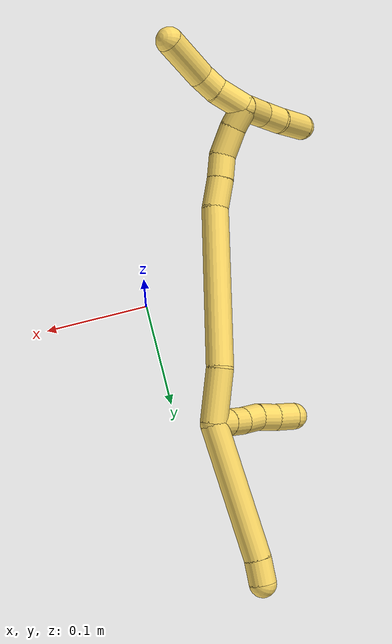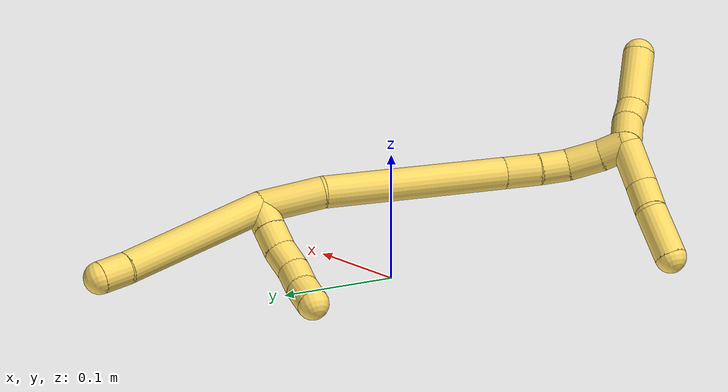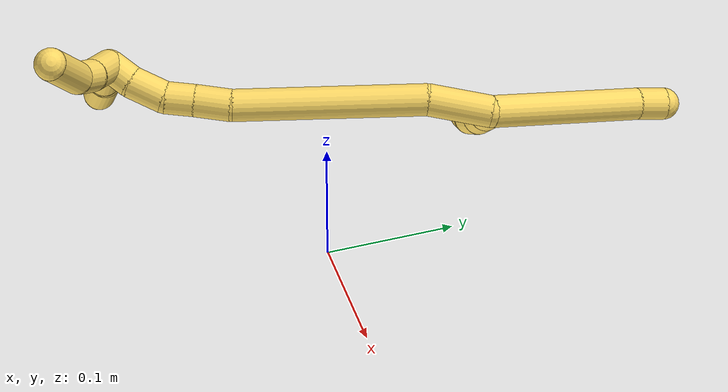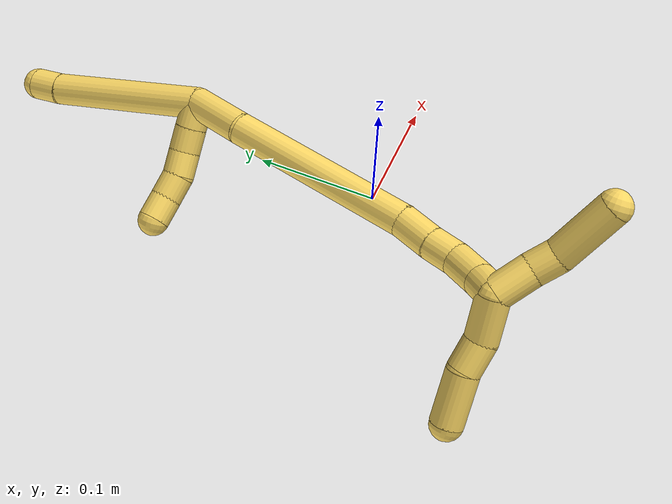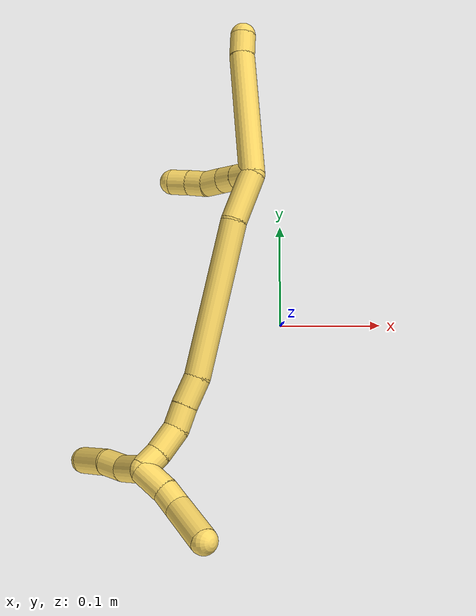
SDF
<sdf version="1.7">
 <world name="default">
  <model name="5">
   <static>0</static>
   <link name="5">
    <collision name="collision-cylinder-e_1_2_8">
     <pose>0.00495 0.061086 -0.016913 -1.84091 0.077939 -0.102413</pose>
     <geometry><cylinder><radius>0.0125</radius><length>0.127155</length></cylinder></geometry>
     <surface>
      <friction><ode><mu>1.16</mu><mu2>1.16</mu2><slip1>0</slip1><slip2>0</slip2></ode></friction>
      <contact><ode><kp>1e+06</kp><kd>1</kd><max_vel>0</max_vel><min_depth>0.001</min_depth></ode></contact>
     </surface>
    </collision>
    <visual name="visual-cylinder-e_1_2_8">
     <pose>0.00495 0.061086 -0.016913 -1.84091 0.077939 -0.102413</pose>
     <geometry><cylinder><radius>0.0125</radius><length>0.127155</length></cylinder></geometry>
     <material><ambient>1 0.858824 0.4 1</ambient></material>
    </visual>
    <collision name="collision-cylinder-e_2_8_6">
     <pose>0.011506 0.133318 -0.035741 -1.74085 0.141079 -0.167257</pose>
     <geometry><cylinder><radius>0.0125</radius><length>0.022845</length></cylinder></geometry>
     <surface>
      <friction><ode><mu>1.16</mu><mu2>1.16</mu2><slip1>0</slip1><slip2>0</slip2></ode></friction>
      <contact><ode><kp>1e+06</kp><kd>1</kd><max_vel>0</max_vel><min_depth>0.001</min_depth></ode></contact>
     </surface>
    </collision>
    <visual name="visual-cylinder-e_2_8_6">
     <pose>0.011506 0.133318 -0.035741 -1.74085 0.141079 -0.167257</pose>
     <geometry><cylinder><radius>0.0125</radius><length>0.022845</length></cylinder></geometry>
     <material><ambient>1 0.858824 0.4 1</ambient></material>
    </visual>
    <collision name="collision-cylinder-e_1_2_9">
     <pose>-0.000467 -0.000439 -0.009979 3.09762 -0.046707 -1.63112</pose>
     <geometry><cylinder><radius>0.0125</radius><length>0.02</length></cylinder></geometry>
     <surface>
      <friction><ode><mu>1.16</mu><mu2>1.16</mu2><slip1>0</slip1><slip2>0</slip2></ode></friction>
      <contact><ode><kp>1e+06</kp><kd>1</kd><max_vel>0</max_vel><min_depth>0.001</min_depth></ode></contact>
     </surface>
    </collision>
    <visual name="visual-cylinder-e_1_2_9">
     <pose>-0.000467 -0.000439 -0.009979 3.09762 -0.046707 -1.63112</pose>
     <geometry><cylinder><radius>0.0125</radius><length>0.02</length></cylinder></geometry>
     <material><ambient>1 0.858824 0.4 1</ambient></material>
    </visual>
    <collision name="collision-cylinder-e_2_9_10">
     <pose>-0.001382 -0.001571 -0.029925 3.07215 -0.044867 -1.14709</pose>
     <geometry><cylinder><radius>0.0125</radius><length>0.02</length></cylinder></geometry>
     <surface>
      <friction><ode><mu>1.16</mu><mu2>1.16</mu2><slip1>0</slip1><slip2>0</slip2></ode></friction>
      <contact><ode><kp>1e+06</kp><kd>1</kd><max_vel>0</max_vel><min_depth>0.001</min_depth></ode></contact>
     </surface>
    </collision>
    <visual name="visual-cylinder-e_2_9_10">
     <pose>-0.001382 -0.001571 -0.029925 3.07215 -0.044867 -1.14709</pose>
     <geometry><cylinder><radius>0.0125</radius><length>0.02</length></cylinder></geometry>
     <material><ambient>1 0.858824 0.4 1</ambient></material>
    </visual>
    <collision name="collision-cylinder-e_3_10_11">
     <pose>-0.003871 -0.003586 -0.049591 3.00621 -0.205507 -1.97836</pose>
     <geometry><cylinder><radius>0.0125</radius><length>0.02</length></cylinder></geometry>
     <surface>
      <friction><ode><mu>1.16</mu><mu2>1.16</mu2><slip1>0</slip1><slip2>0</slip2></ode></friction>
      <contact><ode><kp>1e+06</kp><kd>1</kd><max_vel>0</max_vel><min_depth>0.001</min_depth></ode></contact>
     </surface>
    </collision>
    <visual name="visual-cylinder-e_3_10_11">
     <pose>-0.003871 -0.003586 -0.049591 3.00621 -0.205507 -1.97836</pose>
     <geometry><cylinder><radius>0.0125</radius><length>0.02</length></cylinder></geometry>
     <material><ambient>1 0.858824 0.4 1</ambient></material>
    </visual>
    <collision name="collision-cylinder-e_4_11_12">
     <pose>-0.008897 -0.003963 -0.068788 -3.04249 -0.303122 2.51366</pose>
     <geometry><cylinder><radius>0.0125</radius><length>0.02</length></cylinder></geometry>
     <surface>
      <friction><ode><mu>1.16</mu><mu2>1.16</mu2><slip1>0</slip1><slip2>0</slip2></ode></friction>
      <contact><ode><kp>1e+06</kp><kd>1</kd><max_vel>0</max_vel><min_depth>0.001</min_depth></ode></contact>
     </surface>
    </collision>
    <visual name="visual-cylinder-e_4_11_12">
     <pose>-0.008897 -0.003963 -0.068788 -3.04249 -0.303122 2.51366</pose>
     <geometry><cylinder><radius>0.0125</radius><length>0.02</length></cylinder></geometry>
     <material><ambient>1 0.858824 0.4 1</ambient></material>
    </visual>
    <collision name="collision-cylinder-e_5_12_5">
     <pose>-0.016093 -0.002486 -0.08734 -3.08281 -0.434676 2.87689</pose>
     <geometry><cylinder><radius>0.0125</radius><length>0.02</length></cylinder></geometry>
     <surface>
      <friction><ode><mu>1.16</mu><mu2>1.16</mu2><slip1>0</slip1><slip2>0</slip2></ode></friction>
      <contact><ode><kp>1e+06</kp><kd>1</kd><max_vel>0</max_vel><min_depth>0.001</min_depth></ode></contact>
     </surface>
    </collision>
    <visual name="visual-cylinder-e_5_12_5">
     <pose>-0.016093 -0.002486 -0.08734 -3.08281 -0.434676 2.87689</pose>
     <geometry><cylinder><radius>0.0125</radius><length>0.02</length></cylinder></geometry>
     <material><ambient>1 0.858824 0.4 1</ambient></material>
    </visual>
    <collision name="collision-cylinder-e_1_2_13">
     <pose>-0.009115 -0.023275 -0.001206 1.62257 -0.372796 -0.392124</pose>
     <geometry><cylinder><radius>0.0125</radius><length>0.05005</length></cylinder></geometry>
     <surface>
      <friction><ode><mu>1.16</mu><mu2>1.16</mu2><slip1>0</slip1><slip2>0</slip2></ode></friction>
      <contact><ode><kp>1e+06</kp><kd>1</kd><max_vel>0</max_vel><min_depth>0.001</min_depth></ode></contact>
     </surface>
    </collision>
    <visual name="visual-cylinder-e_1_2_13">
     <pose>-0.009115 -0.023275 -0.001206 1.62257 -0.372796 -0.392124</pose>
     <geometry><cylinder><radius>0.0125</radius><length>0.05005</length></cylinder></geometry>
     <material><ambient>1 0.858824 0.4 1</ambient></material>
    </visual>
    <collision name="collision-cylinder-e_2_13_14">
     <pose>-0.0304 -0.120105 -0.008855 1.65817 -0.163368 -0.178227</pose>
     <geometry><cylinder><radius>0.0125</radius><length>0.149667</length></cylinder></geometry>
     <surface>
      <friction><ode><mu>1.16</mu><mu2>1.16</mu2><slip1>0</slip1><slip2>0</slip2></ode></friction>
      <contact><ode><kp>1e+06</kp><kd>1</kd><max_vel>0</max_vel><min_depth>0.001</min_depth></ode></contact>
     </surface>
    </collision>
    <visual name="visual-cylinder-e_2_13_14">
     <pose>-0.0304 -0.120105 -0.008855 1.65817 -0.163368 -0.178227</pose>
     <geometry><cylinder><radius>0.0125</radius><length>0.149667</length></cylinder></geometry>
     <material><ambient>1 0.858824 0.4 1</ambient></material>
    </visual>
    <collision name="collision-cylinder-e_3_14_15">
     <pose>-0.047323 -0.206803 -0.017769 1.75666 -0.341415 -0.409806</pose>
     <geometry><cylinder><radius>0.0125</radius><length>0.028382</length></cylinder></geometry>
     <surface>
      <friction><ode><mu>1.16</mu><mu2>1.16</mu2><slip1>0</slip1><slip2>0</slip2></ode></friction>
      <contact><ode><kp>1e+06</kp><kd>1</kd><max_vel>0</max_vel><min_depth>0.001</min_depth></ode></contact>
     </surface>
    </collision>
    <visual name="visual-cylinder-e_3_14_15">
     <pose>-0.047323 -0.206803 -0.017769 1.75666 -0.341415 -0.409806</pose>
     <geometry><cylinder><radius>0.0125</radius><length>0.028382</length></cylinder></geometry>
     <material><ambient>1 0.858824 0.4 1</ambient></material>
    </visual>
    <collision name="collision-cylinder-e_4_15_16">
     <pose>-0.05538 -0.230707 -0.021412 1.67924 -0.296327 -0.329756</pose>
     <geometry><cylinder><radius>0.0125</radius><length>0.022639</length></cylinder></geometry>
     <surface>
      <friction><ode><mu>1.16</mu><mu2>1.16</mu2><slip1>0</slip1><slip2>0</slip2></ode></friction>
      <contact><ode><kp>1e+06</kp><kd>1</kd><max_vel>0</max_vel><min_depth>0.001</min_depth></ode></contact>
     </surface>
    </collision>
    <visual name="visual-cylinder-e_4_15_16">
     <pose>-0.05538 -0.230707 -0.021412 1.67924 -0.296327 -0.329756</pose>
     <geometry><cylinder><radius>0.0125</radius><length>0.022639</length></cylinder></geometry>
     <material><ambient>1 0.858824 0.4 1</ambient></material>
    </visual>
    <collision name="collision-cylinder-e_5_16_17">
     <pose>-0.067127 -0.252692 -0.024194 1.71332 -0.640022 -0.730402</pose>
     <geometry><cylinder><radius>0.0125</radius><length>0.028272</length></cylinder></geometry>
     <surface>
      <friction><ode><mu>1.16</mu><mu2>1.16</mu2><slip1>0</slip1><slip2>0</slip2></ode></friction>
      <contact><ode><kp>1e+06</kp><kd>1</kd><max_vel>0</max_vel><min_depth>0.001</min_depth></ode></contact>
     </surface>
    </collision>
    <visual name="visual-cylinder-e_5_16_17">
     <pose>-0.067127 -0.252692 -0.024194 1.71332 -0.640022 -0.730402</pose>
     <geometry><cylinder><radius>0.0125</radius><length>0.028272</length></cylinder></geometry>
     <material><ambient>1 0.858824 0.4 1</ambient></material>
    </visual>
    <collision name="collision-cylinder-e_6_17_1">
     <pose>-0.083444 -0.270803 -0.026644 1.69207 -0.848496 -0.943332</pose>
     <geometry><cylinder><radius>0.0125</radius><length>0.02099</length></cylinder></geometry>
     <surface>
      <friction><ode><mu>1.16</mu><mu2>1.16</mu2><slip1>0</slip1><slip2>0</slip2></ode></friction>
      <contact><ode><kp>1e+06</kp><kd>1</kd><max_vel>0</max_vel><min_depth>0.001</min_depth></ode></contact>
     </surface>
    </collision>
    <visual name="visual-cylinder-e_6_17_1">
     <pose>-0.083444 -0.270803 -0.026644 1.69207 -0.848496 -0.943332</pose>
     <geometry><cylinder><radius>0.0125</radius><length>0.02099</length></cylinder></geometry>
     <material><ambient>1 0.858824 0.4 1</ambient></material>
    </visual>
    <collision name="collision-cylinder-e_1_1_18">
     <pose>-0.088752 -0.279124 -0.044558 3.05783 0.148616 2.11621</pose>
     <geometry><cylinder><radius>0.0125</radius><length>0.034651</length></cylinder></geometry>
     <surface>
      <friction><ode><mu>1.16</mu><mu2>1.16</mu2><slip1>0</slip1><slip2>0</slip2></ode></friction>
      <contact><ode><kp>1e+06</kp><kd>1</kd><max_vel>0</max_vel><min_depth>0.001</min_depth></ode></contact>
     </surface>
    </collision>
    <visual name="visual-cylinder-e_1_1_18">
     <pose>-0.088752 -0.279124 -0.044558 3.05783 0.148616 2.11621</pose>
     <geometry><cylinder><radius>0.0125</radius><length>0.034651</length></cylinder></geometry>
     <material><ambient>1 0.858824 0.4 1</ambient></material>
    </visual>
    <collision name="collision-cylinder-e_2_18_19">
     <pose>-0.087646 -0.278879 -0.073633 -3.00267 -0.119809 1.42289</pose>
     <geometry><cylinder><radius>0.0125</radius><length>0.02441</length></cylinder></geometry>
     <surface>
      <friction><ode><mu>1.16</mu><mu2>1.16</mu2><slip1>0</slip1><slip2>0</slip2></ode></friction>
      <contact><ode><kp>1e+06</kp><kd>1</kd><max_vel>0</max_vel><min_depth>0.001</min_depth></ode></contact>
     </surface>
    </collision>
    <visual name="visual-cylinder-e_2_18_19">
     <pose>-0.087646 -0.278879 -0.073633 -3.00267 -0.119809 1.42289</pose>
     <geometry><cylinder><radius>0.0125</radius><length>0.02441</length></cylinder></geometry>
     <material><ambient>1 0.858824 0.4 1</ambient></material>
    </visual>
    <collision name="collision-cylinder-e_3_19_4">
     <pose>-0.088024 -0.278365 -0.106042 3.08466 0.052829 1.49592</pose>
     <geometry><cylinder><radius>0.0125</radius><length>0.040939</length></cylinder></geometry>
     <surface>
      <friction><ode><mu>1.16</mu><mu2>1.16</mu2><slip1>0</slip1><slip2>0</slip2></ode></friction>
      <contact><ode><kp>1e+06</kp><kd>1</kd><max_vel>0</max_vel><min_depth>0.001</min_depth></ode></contact>
     </surface>
    </collision>
    <visual name="visual-cylinder-e_3_19_4">
     <pose>-0.088024 -0.278365 -0.106042 3.08466 0.052829 1.49592</pose>
     <geometry><cylinder><radius>0.0125</radius><length>0.040939</length></cylinder></geometry>
     <material><ambient>1 0.858824 0.4 1</ambient></material>
    </visual>
    <collision name="collision-cylinder-e_1_1_20">
     <pose>-0.086673 -0.285884 -0.015816 0.612223 0.314959 0.100288</pose>
     <geometry><cylinder><radius>0.0125</radius><length>0.029989</length></cylinder></geometry>
     <surface>
      <friction><ode><mu>1.16</mu><mu2>1.16</mu2><slip1>0</slip1><slip2>0</slip2></ode></friction>
      <contact><ode><kp>1e+06</kp><kd>1</kd><max_vel>0</max_vel><min_depth>0.001</min_depth></ode></contact>
     </surface>
    </collision>
    <visual name="visual-cylinder-e_1_1_20">
     <pose>-0.086673 -0.285884 -0.015816 0.612223 0.314959 0.100288</pose>
     <geometry><cylinder><radius>0.0125</radius><length>0.029989</length></cylinder></geometry>
     <material><ambient>1 0.858824 0.4 1</ambient></material>
    </visual>
    <collision name="collision-cylinder-e_2_20_21">
     <pose>-0.080615 -0.300508 0.00377 0.682098 0.137671 0.048929</pose>
     <geometry><cylinder><radius>0.0125</radius><length>0.020597</length></cylinder></geometry>
     <surface>
      <friction><ode><mu>1.16</mu><mu2>1.16</mu2><slip1>0</slip1><slip2>0</slip2></ode></friction>
      <contact><ode><kp>1e+06</kp><kd>1</kd><max_vel>0</max_vel><min_depth>0.001</min_depth></ode></contact>
     </surface>
    </collision>
    <visual name="visual-cylinder-e_2_20_21">
     <pose>-0.080615 -0.300508 0.00377 0.682098 0.137671 0.048929</pose>
     <geometry><cylinder><radius>0.0125</radius><length>0.020597</length></cylinder></geometry>
     <material><ambient>1 0.858824 0.4 1</ambient></material>
    </visual>
    <collision name="collision-cylinder-e_3_21_3">
     <pose>-0.082226 -0.317759 0.033694 0.456973 -0.122725 -0.028573</pose>
     <geometry><cylinder><radius>0.0125</radius><length>0.049414</length></cylinder></geometry>
     <surface>
      <friction><ode><mu>1.16</mu><mu2>1.16</mu2><slip1>0</slip1><slip2>0</slip2></ode></friction>
      <contact><ode><kp>1e+06</kp><kd>1</kd><max_vel>0</max_vel><min_depth>0.001</min_depth></ode></contact>
     </surface>
    </collision>
    <visual name="visual-cylinder-e_3_21_3">
     <pose>-0.082226 -0.317759 0.033694 0.456973 -0.122725 -0.028573</pose>
     <geometry><cylinder><radius>0.0125</radius><length>0.049414</length></cylinder></geometry>
     <material><ambient>1 0.858824 0.4 1</ambient></material>
    </visual>
    <collision name="collision-sphere-3">
     <pose>-0.08525 -0.328578 0.055699 0 -0 0</pose>
     <geometry><sphere><radius>0.0125</radius></sphere></geometry>
     <surface>
      <friction><ode><mu>1.16</mu><mu2>1.16</mu2><slip1>0</slip1><slip2>0</slip2></ode></friction>
      <contact><ode><kp>1e+06</kp><kd>1</kd><max_vel>0</max_vel><min_depth>0.001</min_depth></ode></contact>
     </surface>
    </collision>
    <visual name="visual-sphere-3">
     <pose>-0.08525 -0.328578 0.055699 0 -0 0</pose>
     <geometry><sphere><radius>0.0125</radius></sphere></geometry>
     <material><ambient>1 0.858824 0.4 1</ambient></material>
    </visual>
    <collision name="collision-sphere-21">
     <pose>-0.079201 -0.306939 0.011689 0 -0 0</pose>
     <geometry><sphere><radius>0.0125</radius></sphere></geometry>
     <surface>
      <friction><ode><mu>1.16</mu><mu2>1.16</mu2><slip1>0</slip1><slip2>0</slip2></ode></friction>
      <contact><ode><kp>1e+06</kp><kd>1</kd><max_vel>0</max_vel><min_depth>0.001</min_depth></ode></contact>
     </surface>
    </collision>
    <visual name="visual-sphere-21">
     <pose>-0.079201 -0.306939 0.011689 0 -0 0</pose>
     <geometry><sphere><radius>0.0125</radius></sphere></geometry>
     <material><ambient>1 0.858824 0.4 1</ambient></material>
    </visual>
    <collision name="collision-sphere-20">
     <pose>-0.082028 -0.294077 -0.004149 0 -0 0</pose>
     <geometry><sphere><radius>0.0125</radius></sphere></geometry>
     <surface>
      <friction><ode><mu>1.16</mu><mu2>1.16</mu2><slip1>0</slip1><slip2>0</slip2></ode></friction>
      <contact><ode><kp>1e+06</kp><kd>1</kd><max_vel>0</max_vel><min_depth>0.001</min_depth></ode></contact>
     </surface>
    </collision>
    <visual name="visual-sphere-20">
     <pose>-0.082028 -0.294077 -0.004149 0 -0 0</pose>
     <geometry><sphere><radius>0.0125</radius></sphere></geometry>
     <material><ambient>1 0.858824 0.4 1</ambient></material>
    </visual>
    <collision name="collision-sphere-4">
     <pose>-0.086943 -0.279528 -0.126449 0 -0 0</pose>
     <geometry><sphere><radius>0.0125</radius></sphere></geometry>
     <surface>
      <friction><ode><mu>1.16</mu><mu2>1.16</mu2><slip1>0</slip1><slip2>0</slip2></ode></friction>
      <contact><ode><kp>1e+06</kp><kd>1</kd><max_vel>0</max_vel><min_depth>0.001</min_depth></ode></contact>
     </surface>
    </collision>
    <visual name="visual-sphere-4">
     <pose>-0.086943 -0.279528 -0.126449 0 -0 0</pose>
     <geometry><sphere><radius>0.0125</radius></sphere></geometry>
     <material><ambient>1 0.858824 0.4 1</ambient></material>
    </visual>
    <collision name="collision-sphere-11">
     <pose>-0.005912 -0.004907 -0.059291 0 -0 0</pose>
     <geometry><sphere><radius>0.0125</radius></sphere></geometry>
     <surface>
      <friction><ode><mu>1.16</mu><mu2>1.16</mu2><slip1>0</slip1><slip2>0</slip2></ode></friction>
      <contact><ode><kp>1e+06</kp><kd>1</kd><max_vel>0</max_vel><min_depth>0.001</min_depth></ode></contact>
     </surface>
    </collision>
    <visual name="visual-sphere-11">
     <pose>-0.005912 -0.004907 -0.059291 0 -0 0</pose>
     <geometry><sphere><radius>0.0125</radius></sphere></geometry>
     <material><ambient>1 0.858824 0.4 1</ambient></material>
    </visual>
    <collision name="collision-sphere-10">
     <pose>-0.001831 -0.002264 -0.039891 0 -0 0</pose>
     <geometry><sphere><radius>0.0125</radius></sphere></geometry>
     <surface>
      <friction><ode><mu>1.16</mu><mu2>1.16</mu2><slip1>0</slip1><slip2>0</slip2></ode></friction>
      <contact><ode><kp>1e+06</kp><kd>1</kd><max_vel>0</max_vel><min_depth>0.001</min_depth></ode></contact>
     </surface>
    </collision>
    <visual name="visual-sphere-10">
     <pose>-0.001831 -0.002264 -0.039891 0 -0 0</pose>
     <geometry><sphere><radius>0.0125</radius></sphere></geometry>
     <material><ambient>1 0.858824 0.4 1</ambient></material>
    </visual>
    <collision name="collision-sphere-6">
     <pose>0.013113 0.144464 -0.037655 0 -0 0</pose>
     <geometry><sphere><radius>0.0125</radius></sphere></geometry>
     <surface>
      <friction><ode><mu>1.16</mu><mu2>1.16</mu2><slip1>0</slip1><slip2>0</slip2></ode></friction>
      <contact><ode><kp>1e+06</kp><kd>1</kd><max_vel>0</max_vel><min_depth>0.001</min_depth></ode></contact>
     </surface>
    </collision>
    <visual name="visual-sphere-6">
     <pose>0.013113 0.144464 -0.037655 0 -0 0</pose>
     <geometry><sphere><radius>0.0125</radius></sphere></geometry>
     <material><ambient>1 0.858824 0.4 1</ambient></material>
    </visual>
    <collision name="collision-sphere-9">
     <pose>-0.000934 -0.000878 -0.019959 0 -0 0</pose>
     <geometry><sphere><radius>0.0125</radius></sphere></geometry>
     <surface>
      <friction><ode><mu>1.16</mu><mu2>1.16</mu2><slip1>0</slip1><slip2>0</slip2></ode></friction>
      <contact><ode><kp>1e+06</kp><kd>1</kd><max_vel>0</max_vel><min_depth>0.001</min_depth></ode></contact>
     </surface>
    </collision>
    <visual name="visual-sphere-9">
     <pose>-0.000934 -0.000878 -0.019959 0 -0 0</pose>
     <geometry><sphere><radius>0.0125</radius></sphere></geometry>
     <material><ambient>1 0.858824 0.4 1</ambient></material>
    </visual>
    <collision name="collision-sphere-2">
     <geometry><sphere><radius>0.0125</radius></sphere></geometry>
     <surface>
      <friction><ode><mu>1.16</mu><mu2>1.16</mu2><slip1>0</slip1><slip2>0</slip2></ode></friction>
      <contact><ode><kp>1e+06</kp><kd>1</kd><max_vel>0</max_vel><min_depth>0.001</min_depth></ode></contact>
     </surface>
    </collision>
    <visual name="visual-sphere-2">
     <geometry><sphere><radius>0.0125</radius></sphere></geometry>
     <material><ambient>1 0.858824 0.4 1</ambient></material>
    </visual>
    <collision name="collision-sphere-19">
     <pose>-0.089105 -0.277201 -0.085634 0 -0 0</pose>
     <geometry><sphere><radius>0.0125</radius></sphere></geometry>
     <surface>
      <friction><ode><mu>1.16</mu><mu2>1.16</mu2><slip1>0</slip1><slip2>0</slip2></ode></friction>
      <contact><ode><kp>1e+06</kp><kd>1</kd><max_vel>0</max_vel><min_depth>0.001</min_depth></ode></contact>
     </surface>
    </collision>
    <visual name="visual-sphere-19">
     <pose>-0.089105 -0.277201 -0.085634 0 -0 0</pose>
     <geometry><sphere><radius>0.0125</radius></sphere></geometry>
     <material><ambient>1 0.858824 0.4 1</ambient></material>
    </visual>
    <collision name="collision-sphere-8">
     <pose>0.0099 0.122173 -0.033827 0 -0 0</pose>
     <geometry><sphere><radius>0.0125</radius></sphere></geometry>
     <surface>
      <friction><ode><mu>1.16</mu><mu2>1.16</mu2><slip1>0</slip1><slip2>0</slip2></ode></friction>
      <contact><ode><kp>1e+06</kp><kd>1</kd><max_vel>0</max_vel><min_depth>0.001</min_depth></ode></contact>
     </surface>
    </collision>
    <visual name="visual-sphere-8">
     <pose>0.0099 0.122173 -0.033827 0 -0 0</pose>
     <geometry><sphere><radius>0.0125</radius></sphere></geometry>
     <material><ambient>1 0.858824 0.4 1</ambient></material>
    </visual>
    <collision name="collision-sphere-12">
     <pose>-0.011882 -0.003019 -0.078285 0 -0 0</pose>
     <geometry><sphere><radius>0.0125</radius></sphere></geometry>
     <surface>
      <friction><ode><mu>1.16</mu><mu2>1.16</mu2><slip1>0</slip1><slip2>0</slip2></ode></friction>
      <contact><ode><kp>1e+06</kp><kd>1</kd><max_vel>0</max_vel><min_depth>0.001</min_depth></ode></contact>
     </surface>
    </collision>
    <visual name="visual-sphere-12">
     <pose>-0.011882 -0.003019 -0.078285 0 -0 0</pose>
     <geometry><sphere><radius>0.0125</radius></sphere></geometry>
     <material><ambient>1 0.858824 0.4 1</ambient></material>
    </visual>
    <collision name="collision-sphere-5">
     <pose>-0.020304 -0.001953 -0.096394 0 -0 0</pose>
     <geometry><sphere><radius>0.0125</radius></sphere></geometry>
     <surface>
      <friction><ode><mu>1.16</mu><mu2>1.16</mu2><slip1>0</slip1><slip2>0</slip2></ode></friction>
      <contact><ode><kp>1e+06</kp><kd>1</kd><max_vel>0</max_vel><min_depth>0.001</min_depth></ode></contact>
     </surface>
    </collision>
    <visual name="visual-sphere-5">
     <pose>-0.020304 -0.001953 -0.096394 0 -0 0</pose>
     <geometry><sphere><radius>0.0125</radius></sphere></geometry>
     <material><ambient>1 0.858824 0.4 1</ambient></material>
    </visual>
    <collision name="collision-sphere-13">
     <pose>-0.018229 -0.04655 -0.002412 0 -0 0</pose>
     <geometry><sphere><radius>0.0125</radius></sphere></geometry>
     <surface>
      <friction><ode><mu>1.16</mu><mu2>1.16</mu2><slip1>0</slip1><slip2>0</slip2></ode></friction>
      <contact><ode><kp>1e+06</kp><kd>1</kd><max_vel>0</max_vel><min_depth>0.001</min_depth></ode></contact>
     </surface>
    </collision>
    <visual name="visual-sphere-13">
     <pose>-0.018229 -0.04655 -0.002412 0 -0 0</pose>
     <geometry><sphere><radius>0.0125</radius></sphere></geometry>
     <material><ambient>1 0.858824 0.4 1</ambient></material>
    </visual>
    <collision name="collision-sphere-14">
     <pose>-0.042571 -0.193661 -0.015298 0 -0 0</pose>
     <geometry><sphere><radius>0.0125</radius></sphere></geometry>
     <surface>
      <friction><ode><mu>1.16</mu><mu2>1.16</mu2><slip1>0</slip1><slip2>0</slip2></ode></friction>
      <contact><ode><kp>1e+06</kp><kd>1</kd><max_vel>0</max_vel><min_depth>0.001</min_depth></ode></contact>
     </surface>
    </collision>
    <visual name="visual-sphere-14">
     <pose>-0.042571 -0.193661 -0.015298 0 -0 0</pose>
     <geometry><sphere><radius>0.0125</radius></sphere></geometry>
     <material><ambient>1 0.858824 0.4 1</ambient></material>
    </visual>
    <collision name="collision-sphere-15">
     <pose>-0.052074 -0.219944 -0.02024 0 -0 0</pose>
     <geometry><sphere><radius>0.0125</radius></sphere></geometry>
     <surface>
      <friction><ode><mu>1.16</mu><mu2>1.16</mu2><slip1>0</slip1><slip2>0</slip2></ode></friction>
      <contact><ode><kp>1e+06</kp><kd>1</kd><max_vel>0</max_vel><min_depth>0.001</min_depth></ode></contact>
     </surface>
    </collision>
    <visual name="visual-sphere-15">
     <pose>-0.052074 -0.219944 -0.02024 0 -0 0</pose>
     <geometry><sphere><radius>0.0125</radius></sphere></geometry>
     <material><ambient>1 0.858824 0.4 1</ambient></material>
    </visual>
    <collision name="collision-sphere-16">
     <pose>-0.058685 -0.241469 -0.022584 0 -0 0</pose>
     <geometry><sphere><radius>0.0125</radius></sphere></geometry>
     <surface>
      <friction><ode><mu>1.16</mu><mu2>1.16</mu2><slip1>0</slip1><slip2>0</slip2></ode></friction>
      <contact><ode><kp>1e+06</kp><kd>1</kd><max_vel>0</max_vel><min_depth>0.001</min_depth></ode></contact>
     </surface>
    </collision>
    <visual name="visual-sphere-16">
     <pose>-0.058685 -0.241469 -0.022584 0 -0 0</pose>
     <geometry><sphere><radius>0.0125</radius></sphere></geometry>
     <material><ambient>1 0.858824 0.4 1</ambient></material>
    </visual>
    <collision name="collision-sphere-17">
     <pose>-0.075569 -0.263916 -0.025805 0 -0 0</pose>
     <geometry><sphere><radius>0.0125</radius></sphere></geometry>
     <surface>
      <friction><ode><mu>1.16</mu><mu2>1.16</mu2><slip1>0</slip1><slip2>0</slip2></ode></friction>
      <contact><ode><kp>1e+06</kp><kd>1</kd><max_vel>0</max_vel><min_depth>0.001</min_depth></ode></contact>
     </surface>
    </collision>
    <visual name="visual-sphere-17">
     <pose>-0.075569 -0.263916 -0.025805 0 -0 0</pose>
     <geometry><sphere><radius>0.0125</radius></sphere></geometry>
     <material><ambient>1 0.858824 0.4 1</ambient></material>
    </visual>
    <collision name="collision-sphere-1">
     <pose>-0.091318 -0.27769 -0.027483 0 -0 0</pose>
     <geometry><sphere><radius>0.0125</radius></sphere></geometry>
     <surface>
      <friction><ode><mu>1.16</mu><mu2>1.16</mu2><slip1>0</slip1><slip2>0</slip2></ode></friction>
      <contact><ode><kp>1e+06</kp><kd>1</kd><max_vel>0</max_vel><min_depth>0.001</min_depth></ode></contact>
     </surface>
    </collision>
    <visual name="visual-sphere-1">
     <pose>-0.091318 -0.27769 -0.027483 0 -0 0</pose>
     <geometry><sphere><radius>0.0125</radius></sphere></geometry>
     <material><ambient>1 0.858824 0.4 1</ambient></material>
    </visual>
    <collision name="collision-sphere-18">
     <pose>-0.086187 -0.280557 -0.061632 0 -0 0</pose>
     <geometry><sphere><radius>0.0125</radius></sphere></geometry>
     <surface>
      <friction><ode><mu>1.16</mu><mu2>1.16</mu2><slip1>0</slip1><slip2>0</slip2></ode></friction>
      <contact><ode><kp>1e+06</kp><kd>1</kd><max_vel>0</max_vel><min_depth>0.001</min_depth></ode></contact>
     </surface>
    </collision>
    <visual name="visual-sphere-18">
     <pose>-0.086187 -0.280557 -0.061632 0 -0 0</pose>
     <geometry><sphere><radius>0.0125</radius></sphere></geometry>
     <material><ambient>1 0.858824 0.4 1</ambient></material>
    </visual>
    <inertial>
     <pose>-0.037487 -0.121106 -0.023883 0 -0 0</pose>
     <mass>0.75</mass>
     <inertia>
      <ixx>0.000411</ixx>
      <ixy>0</ixy>
      <ixz>0</ixz>
      <iyy>-0.000121</iyy>
      <iyz>0</iyz>
      <izz>0.000166</izz>
     </inertia>
    </inertial>
   </link>
   <pose>-0.029186 0.14028 0.082048 0.030803 0.725699 -0.028306</pose>
  </model>
 </world>
</sdf>
